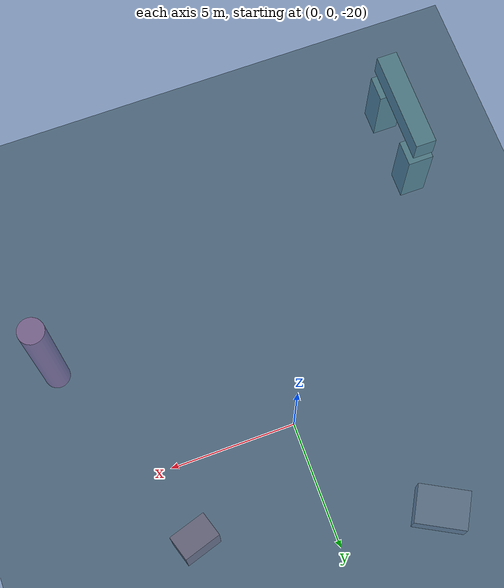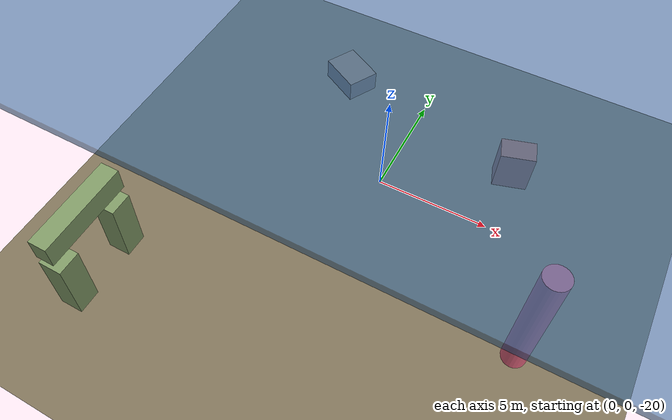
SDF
<?xml version="1.0"?>
<sdf version="1.6">
  <world name="ocean">

    <!-- Physics configuration -->
    <physics type="ode">
      <max_step_size>0.001</max_step_size>
      <real_time_factor>1</real_time_factor>
      <real_time_update_rate>1000</real_time_update_rate>
    </physics>

    <!-- Scene configuration for underwater ambiance -->
    <scene>
      <ambient>0.2 0.3 0.5 1.0</ambient>
      <background>0.0 0.1 0.3 1.0</background>
      <shadows>false</shadows>
      <fog>
        <color>0.1 0.2 0.4 1.0</color>
        <type>linear</type>
        <start>1.0</start>
        <end>30.0</end>
        <density>0.5</density>
      </fog>
    </scene>

    <!-- Underwater lighting -->
    <light type="directional" name="sun">
      <cast_shadows>false</cast_shadows>
      <pose>0 0 10 0 0 0</pose>
      <diffuse>0.3 0.4 0.6 1</diffuse>
      <specular>0.1 0.1 0.2 1</specular>
      <attenuation>
        <range>1000</range>
        <constant>0.9</constant>
        <linear>0.01</linear>
        <quadratic>0.001</quadratic>
      </attenuation>
      <direction>0 0.5 -1</direction>
    </light>

    <!--
      OCEAN FLOOR

      Large flat plane at -20m depth.
      Sandy texture would be nice but we'll keep it simple.
    -->
    <model name="ocean_floor">
      <static>true</static>
      <pose>0 0 -20 0 0 0</pose>
      <link name="floor_link">
        <collision name="collision">
          <geometry>
            <plane>
              <normal>0 0 1</normal>
              <size>100 100</size>
            </plane>
          </geometry>
        </collision>
        <visual name="visual">
          <geometry>
            <plane>
              <normal>0 0 1</normal>
              <size>100 100</size>
            </plane>
          </geometry>
          <material>
            <ambient>0.4 0.35 0.25 1</ambient>
            <diffuse>0.5 0.45 0.35 1</diffuse>
          </material>
        </visual>
      </link>
    </model>

    <!--
      CORAL REEF STRUCTURES

      Simple box models representing reef features.
      Provide visual landmarks and obstacles.
    -->

    <!-- Reef rock 1 -->
    <model name="reef_rock_1">
      <static>true</static>
      <pose>5 3 -19 0 0 0.3</pose>
      <link name="link">
        <collision name="collision">
          <geometry>
            <box>
              <size>1.5 1.0 2.0</size>
            </box>
          </geometry>
        </collision>
        <visual name="visual">
          <geometry>
            <box>
              <size>1.5 1.0 2.0</size>
            </box>
          </geometry>
          <material>
            <ambient>0.6 0.3 0.2 1</ambient>
            <diffuse>0.7 0.4 0.3 1</diffuse>
          </material>
        </visual>
      </link>
    </model>

    <!-- Reef rock 2 -->
    <model name="reef_rock_2">
      <static>true</static>
      <pose>-4 5 -19.5 0 0 -0.5</pose>
      <link name="link">
        <collision name="collision">
          <geometry>
            <box>
              <size>2.0 1.5 1.0</size>
            </box>
          </geometry>
        </collision>
        <visual name="visual">
          <geometry>
            <box>
              <size>2.0 1.5 1.0</size>
            </box>
          </geometry>
          <material>
            <ambient>0.5 0.4 0.3 1</ambient>
            <diffuse>0.6 0.5 0.4 1</diffuse>
          </material>
        </visual>
      </link>
    </model>

    <!-- Tall coral structure -->
    <model name="coral_tower">
      <static>true</static>
      <pose>8 -5 -17 0 0 0</pose>
      <link name="link">
        <collision name="collision">
          <geometry>
            <cylinder>
              <radius>0.5</radius>
              <length>6</length>
            </cylinder>
          </geometry>
        </collision>
        <visual name="visual">
          <geometry>
            <cylinder>
              <radius>0.5</radius>
              <length>6</length>
            </cylinder>
          </geometry>
          <material>
            <ambient>0.8 0.3 0.4 1</ambient>
            <diffuse>0.9 0.4 0.5 1</diffuse>
          </material>
        </visual>
      </link>
    </model>

    <!-- Reef arch -->
    <model name="reef_arch_base_left">
      <static>true</static>
      <pose>-8 -8 -18.5 0 0 0</pose>
      <link name="link">
        <collision name="collision">
          <geometry>
            <box>
              <size>1.0 1.0 3.0</size>
            </box>
          </geometry>
        </collision>
        <visual name="visual">
          <geometry>
            <box>
              <size>1.0 1.0 3.0</size>
            </box>
          </geometry>
          <material>
            <ambient>0.4 0.5 0.3 1</ambient>
            <diffuse>0.5 0.6 0.4 1</diffuse>
          </material>
        </visual>
      </link>
    </model>

    <model name="reef_arch_base_right">
      <static>true</static>
      <pose>-8 -11 -18.5 0 0 0</pose>
      <link name="link">
        <collision name="collision">
          <geometry>
            <box>
              <size>1.0 1.0 3.0</size>
            </box>
          </geometry>
        </collision>
        <visual name="visual">
          <geometry>
            <box>
              <size>1.0 1.0 3.0</size>
            </box>
          </geometry>
          <material>
            <ambient>0.4 0.5 0.3 1</ambient>
            <diffuse>0.5 0.6 0.4 1</diffuse>
          </material>
        </visual>
      </link>
    </model>

    <model name="reef_arch_top">
      <static>true</static>
      <pose>-8 -9.5 -16 0 1.57 0</pose>
      <link name="link">
        <collision name="collision">
          <geometry>
            <box>
              <size>1.0 4.0 0.8</size>
            </box>
          </geometry>
        </collision>
        <visual name="visual">
          <geometry>
            <box>
              <size>1.0 4.0 0.8</size>
            </box>
          </geometry>
          <material>
            <ambient>0.4 0.5 0.3 1</ambient>
            <diffuse>0.5 0.6 0.4 1</diffuse>
          </material>
        </visual>
      </link>
    </model>

    <!--
      WATER SURFACE (visual only)

      Semi-transparent plane at z=0.
      Helps orient the viewer.
    -->
    <model name="water_surface">
      <static>true</static>
      <pose>0 0 0 0 0 0</pose>
      <link name="link">
        <visual name="visual">
          <geometry>
            <plane>
              <normal>0 0 1</normal>
              <size>100 100</size>
            </plane>
          </geometry>
          <material>
            <ambient>0.1 0.3 0.5 0.6</ambient>
            <diffuse>0.2 0.4 0.6 0.6</diffuse>
          </material>
          <transparency>0.4</transparency>
        </visual>
      </link>
    </model>

    <!-- Gazebo ROS integration -->
    <plugin name="gazebo_ros_state" filename="libgazebo_ros_state.so">
      <ros>
        <namespace>/gazebo</namespace>
      </ros>
      <update_rate>50</update_rate>
    </plugin>

  </world>
</sdf>
